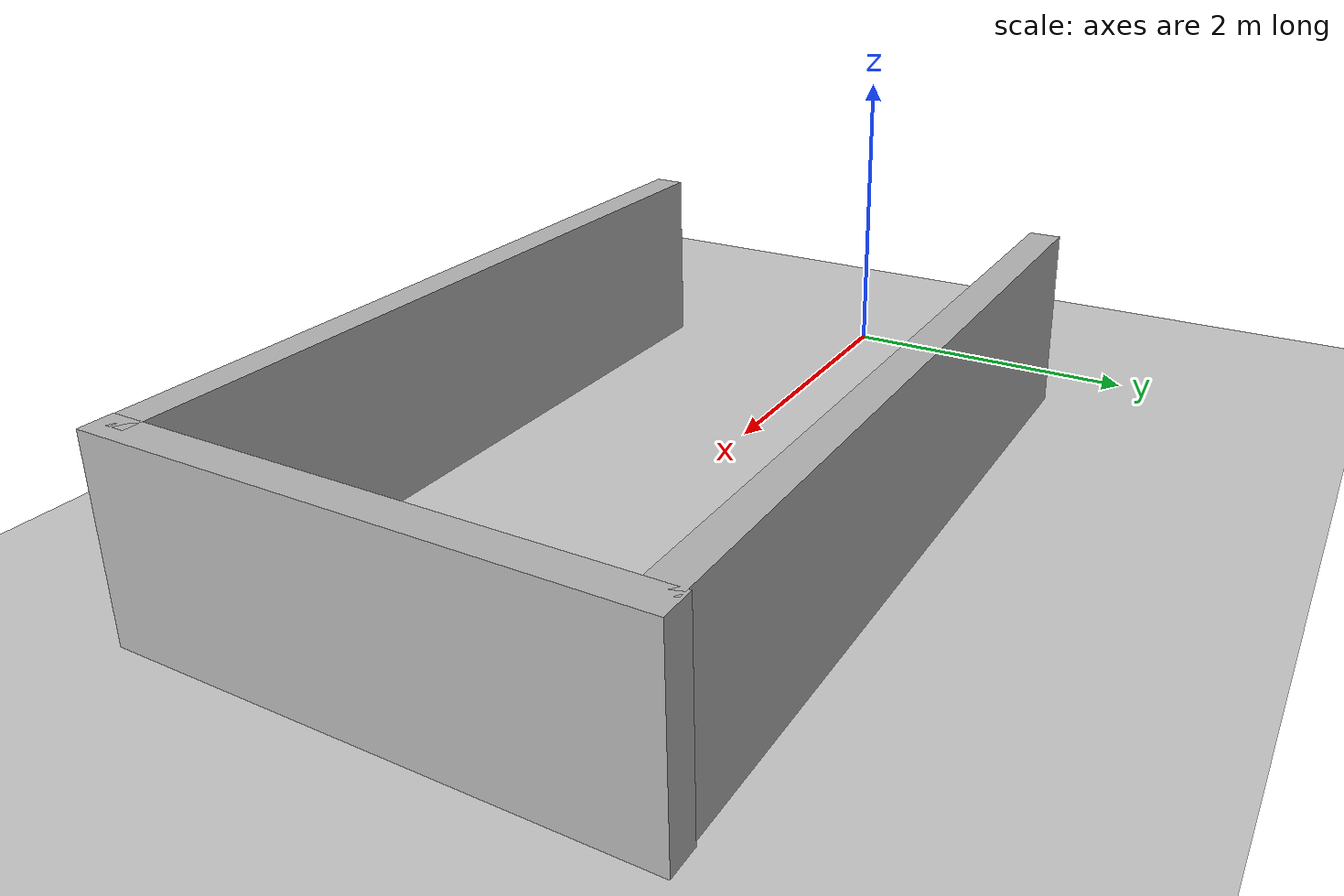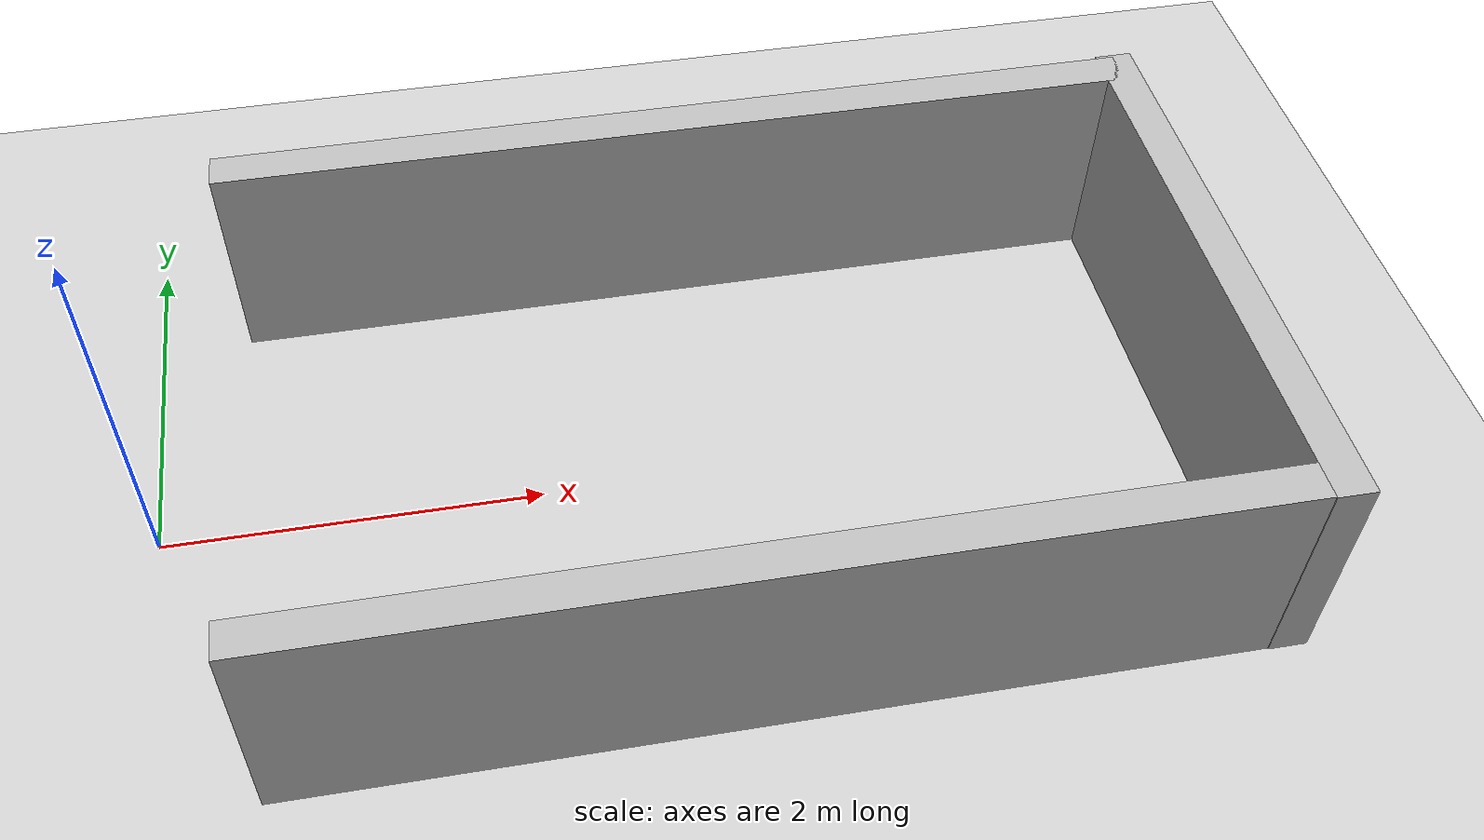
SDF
<?xml version="1.0"?>
<sdf version="1.6">
  <world name="v2-04g-r3-maneuver-s5034">
    <gravity>0 0 -9.81</gravity>
    <physics name="v2_deterministic" type="ode">
      <max_step_size>0.002</max_step_size>
      <real_time_update_rate>500</real_time_update_rate>
    </physics>
    <include>
      <uri>model://sun</uri>
    </include>
    <include>
      <uri>model://ground_plane</uri>
    </include>
    <model name="bay-left">
      <static>true</static>
      <pose>2.985065258 1.497549869 0.600000000 0 0 0.000826086</pose>
      <link name="link">
        <collision name="collision">
          <geometry>
            <box>
              <size>5.000000 0.200000 1.200000</size>
            </box>
          </geometry>
        </collision>
        <visual name="visual">
          <geometry>
            <box>
              <size>5.000000 0.200000 1.200000</size>
            </box>
          </geometry>
        </visual>
      </link>
    </model>
    <model name="bay-right">
      <static>true</static>
      <pose>2.998721695 -1.478125975 0.600000000 0 0 -0.000644072</pose>
      <link name="link">
        <collision name="collision">
          <geometry>
            <box>
              <size>5.000000 0.200000 1.200000</size>
            </box>
          </geometry>
        </collision>
        <visual name="visual">
          <geometry>
            <box>
              <size>5.000000 0.200000 1.200000</size>
            </box>
          </geometry>
        </visual>
      </link>
    </model>
    <model name="bay-back">
      <static>true</static>
      <pose>5.490529373 0.014774561 0.600000000 0 0 -0.000787173</pose>
      <link name="link">
        <collision name="collision">
          <geometry>
            <box>
              <size>0.200000 3.200000 1.200000</size>
            </box>
          </geometry>
        </collision>
        <visual name="visual">
          <geometry>
            <box>
              <size>0.200000 3.200000 1.200000</size>
            </box>
          </geometry>
        </visual>
      </link>
    </model>
  </world>
</sdf>
